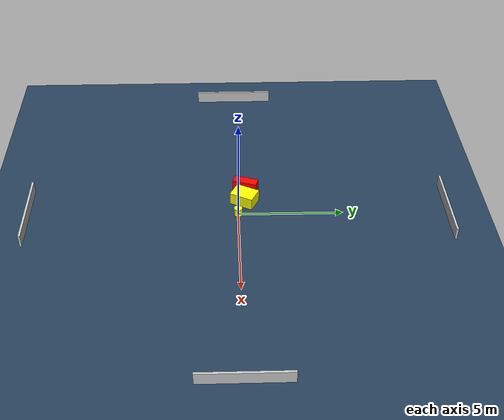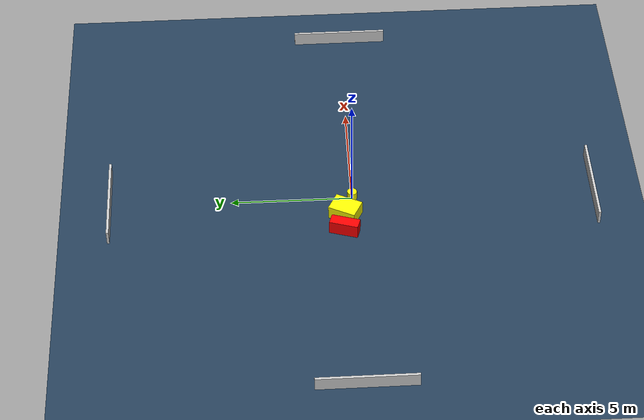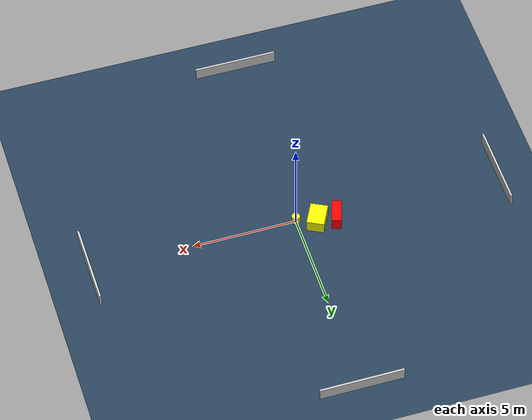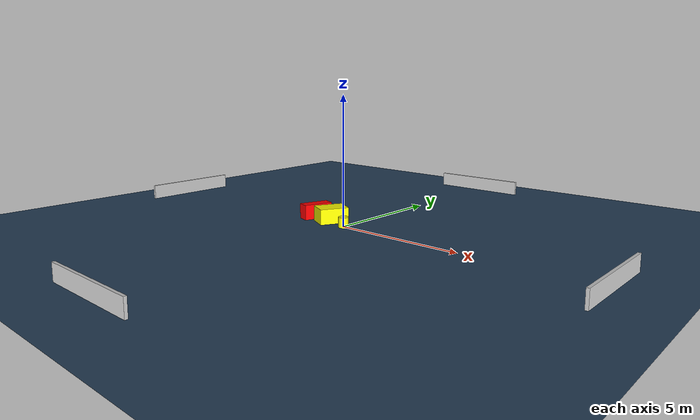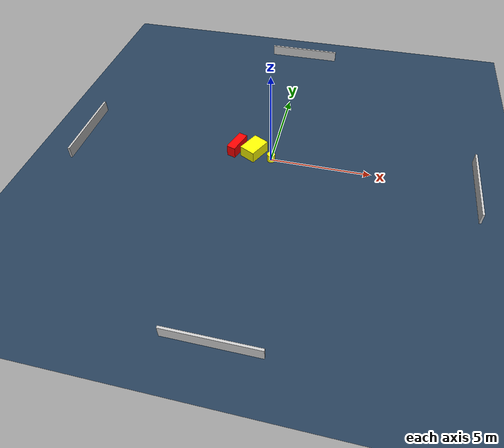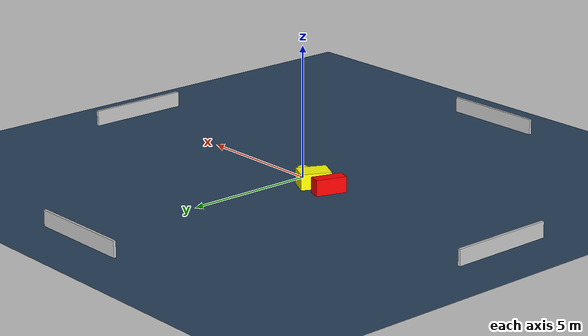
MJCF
<?xml version="1.0" ?>
<mujoco model="generated_environment">
  <option timestep="0.01" integrator="RK4" cone="elliptic"/>
  <default>
    <geom density="1"/>
  </default>
  <asset>
    <texture builtin="gradient" height="3072" name="skybox" rgb1="0.3 0.5 0.7" rgb2="0 0 0" type="skybox" width="512"/>
    <texture builtin="checker" height="300" name="groundplane" rgb1="0.2 0.3 0.4" rgb2="0.1 0.2 0.3" type="2d" width="300"/>
    <material name="groundplane" reflectance="0.2" texrepeat="5 5" texture="groundplane"/>
  </asset>
  <worldbody>
    <light dir="0 0 -1" directional="true" pos="0 0 1.5"/>
    <geom condim="3" friction="0.5 0.005 0.001" material="groundplane" name="floor" pos="0 0 0" size="0 0 0.05" type="plane"/>
    <body name="walls">
      <geom name="wall_1" condim="4" pos="-10.0 0.0 0.3" rgba="0.800000011920929 0.800000011920929 0.800000011920929 1.0" size="0.05 2.0 0.3" type="box"/>
      <geom name="wall_2" condim="4" pos="10.0 0.0 0.3" rgba="0.800000011920929 0.800000011920929 0.800000011920929 1.0" size="0.05 2.0 0.3" type="box"/>
      <geom name="wall_3" condim="4" pos="0.0 -10.0 0.3" rgba="0.800000011920929 0.800000011920929 0.800000011920929 1.0" size="2.0 0.05 0.3" type="box"/>
      <geom name="wall_4" condim="4" pos="0.0 10.0 0.3" rgba="0.800000011920929 0.800000011920929 0.800000011920929 1.0" size="2.0 0.05 0.3" type="box"/>
    </body>
    <body name="robot">
      <joint name="joint_x" type="slide" pos="0 0 0" axis="1 0 0"/>
      <joint name="joint_y" type="slide" pos="0 0 0" axis="0 1 0"/>
      <geom name="robot" type="cylinder" pos="0.0 0.0 0.2" size="0.2 0.2 0.0" mass="5.0" friction="1.0 0.005 0.0001" condim="4" rgba="1.0 1.0 0.0 1.0"/>
    </body>
    <body name="obstacle_1_movable">
      <geom name="obstacle_1_movable" condim="4" pos="-0.9522872836959626 0.3283126284207308 0.3" euler="0 0 242.9554961219132" friction="0.0 0.005 0.001" rgba="1.0 1.0 0.0 1.0" size="0.5774086529047804 0.4188144252156921 0.3" type="box" mass="0.1"/>
      <joint type="free"/>
    </body>
    <body name="obstacle_2_static">
      <geom name="obstacle_2_static" condim="4" pos="-1.8720953129374045 0.4045520375659292 0.3" euler="0 0 342.50855358292995" friction="0.0 0.005 0.001" rgba="1.0 0.0 0.0 1.0" size="0.2287933566366927 0.5934043613970378 0.3" type="box"/>
    </body>
  </worldbody>
  <actuator>
    <motor name="actuator_x" joint="joint_x" gear="1" ctrlrange="-1 1"/>
    <motor name="actuator_y" joint="joint_y" gear="1" ctrlrange="-1 1"/>
  </actuator>
</mujoco>
